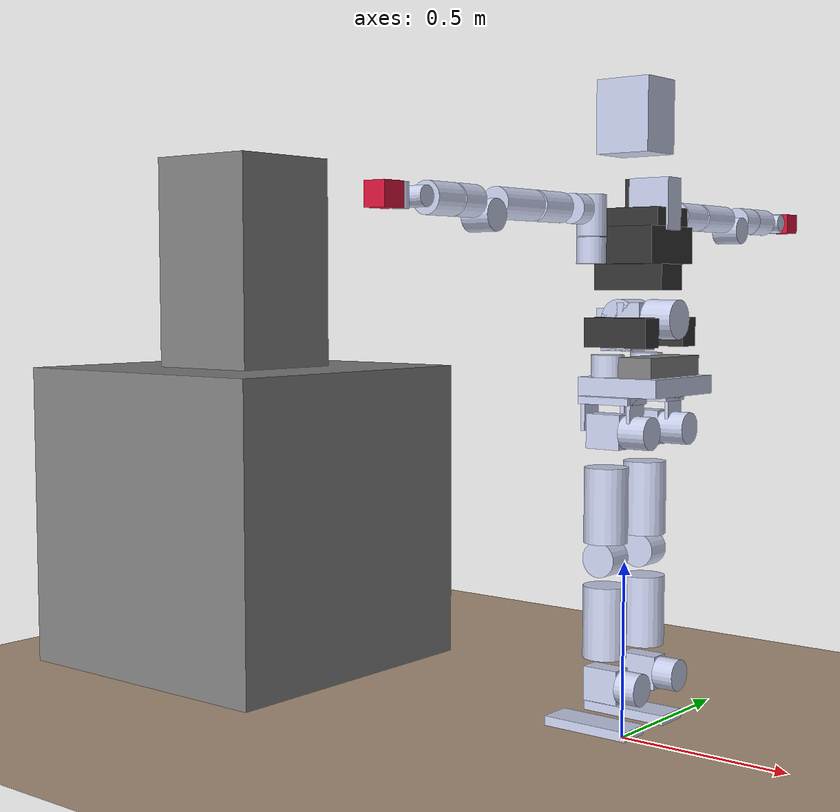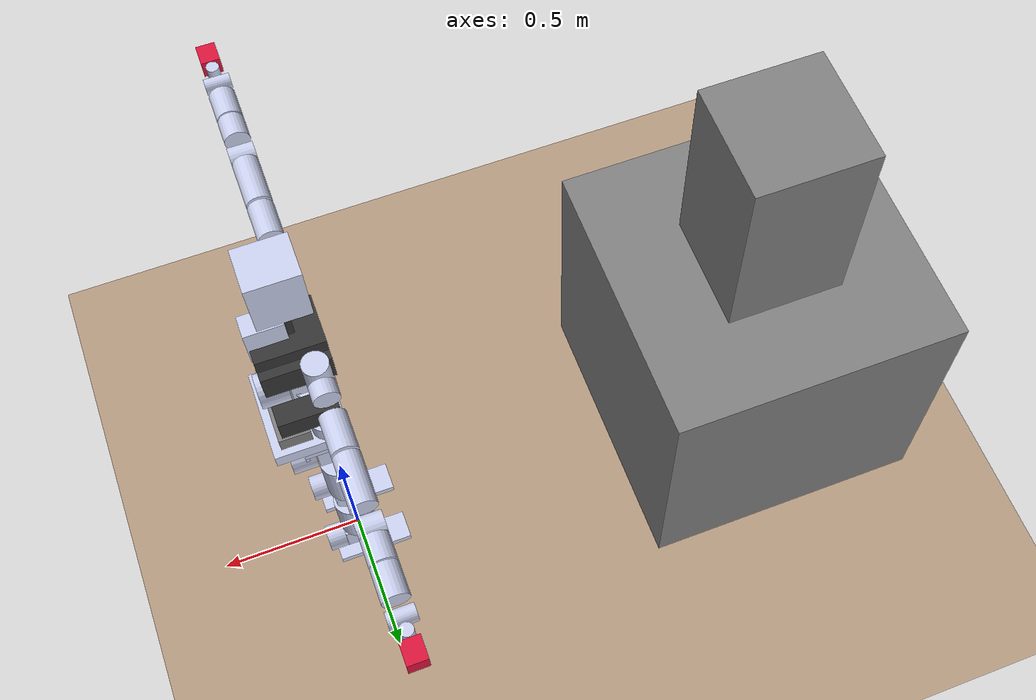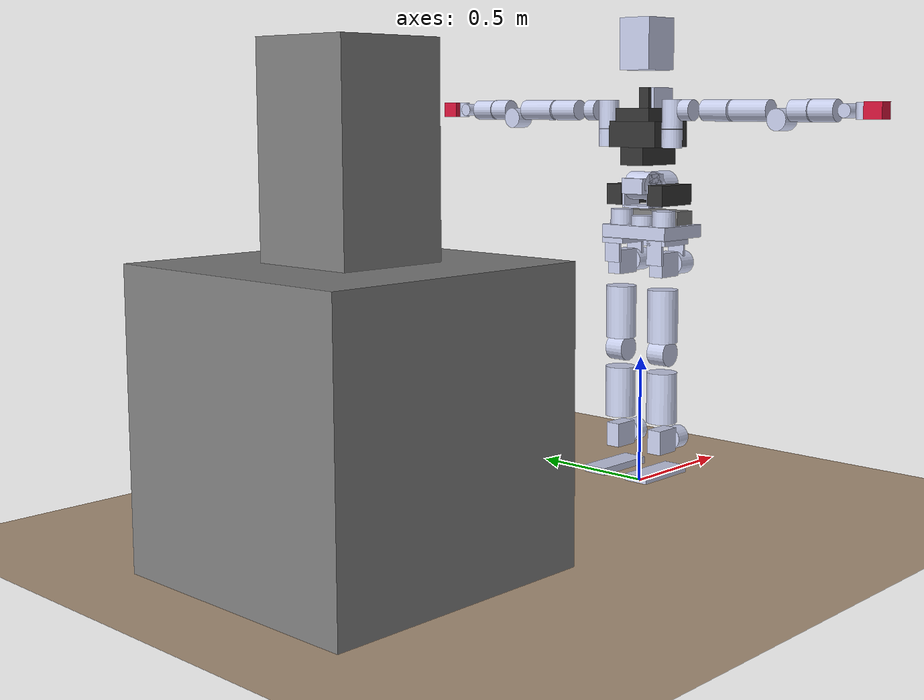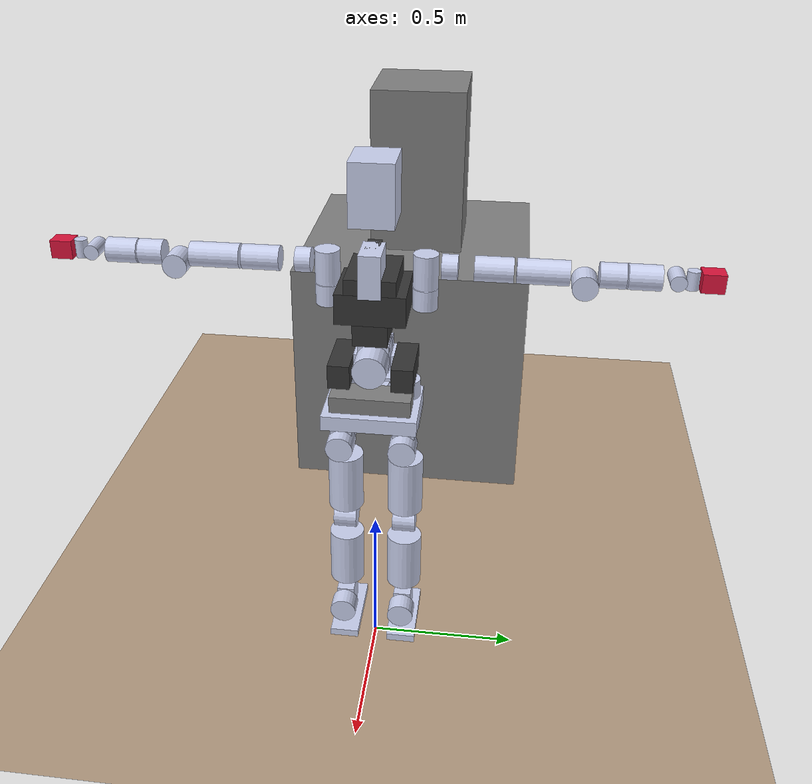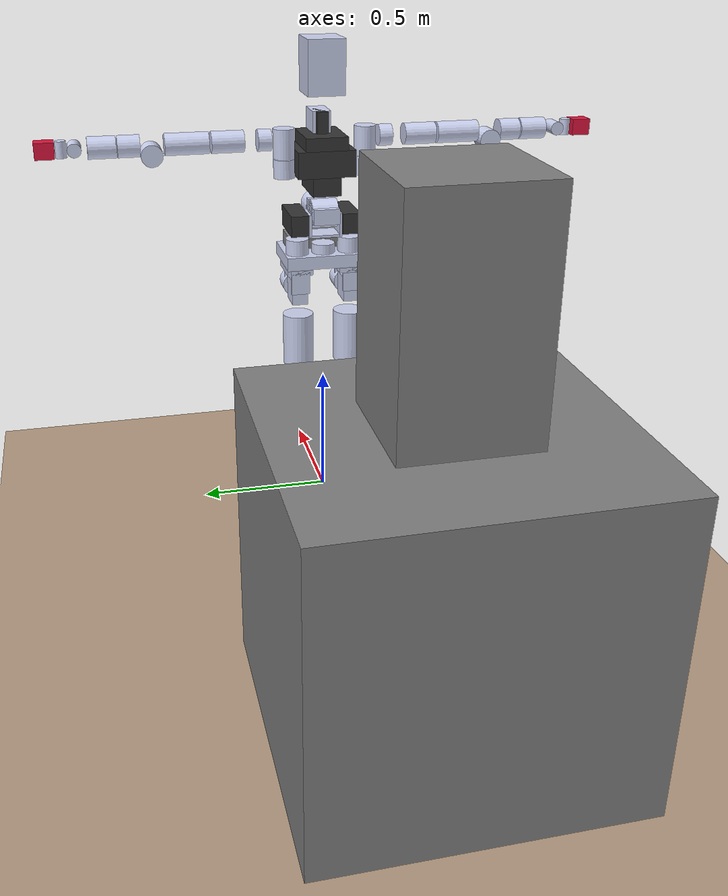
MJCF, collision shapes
<mujoco model="dyros_red_description">
    <compiler angle="radian" meshdir="../meshes/"/>
    <size njmax="500" nconmax="100" />

	<default>

		<joint damping="1"/>
		<default class="viz">
			<geom contype="0" conaffinity="0" group="1" type="mesh" rgba=".6 .6 .7 1"/>
		</default>

		<default class="cls">
			<geom group="2" rgba="0.79216 0.81961 0.93333 0.05"/>
		</default>

		<default class="cls_f">
			<geom group="2" rgba="0.79216 0.81961 0.93333 0.1" friction="1 0.005 0.0001"/>
		</default>

		<default class="FTsensor">
			<site type="cylinder" size="0.005 0.005" group="4" rgba=".1 .1 .9 1"/>
		</default>

	</default>

	<option timestep='0.001' iterations="50" tolerance="1e-10" solver="Newton" jacobian="dense" cone="elliptic"/>

	<visual>
		<map znear="0.05"/>
	</visual>

    <asset>
        <mesh name="Pelvis_link" file="Pelvis_link2.STL" scale="0.001 0.001 0.001"/>
        <mesh name="HipRoll_R_link" file="HipRoll_R_link.STL" />
        <mesh name="HipCenter_R_Link" file="HipCenter_R_Link.STL" />
        <mesh name="Thigh_R_Link" file="Thigh_R_Link.STL" />
        <mesh name="Knee_R_Link" file="Knee_R_Link.STL" />
        <mesh name="AnkleCenter_R_Link" file="AnkleCenter_R_Link.STL" />
        <mesh name="AnkleRoll_R_Link" file="AnkleRoll_R_Link.STL" />
        <mesh name="HipRoll_L_Link" file="HipRoll_L_Link.STL" />
        <mesh name="HipCenter_L_Link" file="HipCenter_L_Link.STL" />
        <mesh name="Thigh_L_Link" file="Thigh_L_Link.STL" />
        <mesh name="Knee_L_Link" file="Knee_L_Link.STL" />
        <mesh name="AnkleCenter_L_Link" file="AnkleCenter_L_Link.STL" />
        <mesh name="AnkleRoll_L_Link" file="AnkleRoll_L_Link.STL" />
        <mesh name="waist1" file="waistyaw.STL" scale="0.001 0.001 0.001"/>
        <mesh name="waist2" file="waist2.STL" />
        <mesh name="upperbody" file="upperbody.STL" />
        <mesh name="R_shoulder1" file="R_shoulder1.STL" />
        <mesh name="R_shoulder2" file="R_shoulder2.STL" />
        <mesh name="R_shoulder3" file="R_shoulder3.STL" />
        <mesh name="R_arm" file="R_arm.STL" />
        <mesh name="R_elbow" file="R_elbow.STL" />
        <mesh name="R_forearm" file="R_forearm.STL" />
        <mesh name="R_wrist1" file="R_wrist1.STL" />
        <mesh name="L_shoulder1" file="L_shoulder1.STL" />
        <mesh name="L_shoulder2" file="L_shoulder2.STL" />
        <mesh name="L_shoulder3" file="L_shoulder3.STL" />
        <mesh name="L_arm" file="L_arm.STL" />
        <mesh name="L_elbow" file="L_elbow.STL" />
        <mesh name="L_forearm" file="L_forearm.STL" />
        <mesh name="L_wrist1" file="L_wrist1.STL" />
		<mesh name="neck" file="neck.STL" />
		<mesh name="head" file="head.STL" />
		<mesh name="hand" file="wrist2joint.STL" scale="0.001 0.001 0.001"/>
    </asset>

    <worldbody>
		<geom name="ground" type="plane" pos="0 0 0" size="4 4 .05" friction="1 0.005 0.0001" rgba="0.7 0.6 0.5 1"/>
		<geom name="box" type="box" size="0.5 0.5 0.5" pos="-1.5 0 0.5"/>
		<geom name="box2" type="box" size="0.2 0.2 0.5" pos="-1.5 0 1.2"/>
		<light mode='targetbodycom' target='base_link' directional='false' diffuse='.8 .8 .8' specular='0.8 0.8 0.8' pos='0 0 4.0' dir='0 0 -1'/>

        <body name="base_link" pos="0 0 1" euler="0 0 3.1415">
			<joint type="free" limited='false' damping="0" stiffness="0" armature="0"/>
            <inertial pos="-0.0099622 6.3628e-07 0.012618" quat="0.496444 0.497031 -0.503539 0.502944" mass="0.90054" diaginertia="0.0101981 0.00947498 0.00223109" />
            <geom class="viz" rgba="0.20313 0.20313 0.20313 1" quat="0.5 0.5 0.5 0.5" mesh="Pelvis_link" />
			<geom size="0.045 0.044" pos="0 0 0.019" type="cylinder" class="cls" />
            <geom size="0.045 0.055" pos="0 0.1025 0.03" type="cylinder" class="cls" />
            <geom size="0.045 0.055" pos="0 -0.1025 0.03" type="cylinder" class="cls" />
            <geom size="0.12 0.1525 0.025" pos="-0.058 0 0" type="box" class="cls" />
			<geom size="0.05 0.13 0.05" pos="-0.1 0 0.03" type="box" group="1"/>
			<site name="Pelvis_IMU" type="cylinder" size="0.005 0.005" group="4" rgba=".1 .1 .9 1"/>
            <body name="R_HipRoll_Link" pos="0 -0.1025 -0.1225">
                <inertial pos="-0.049575 6.7216e-07 -0.060375" quat="0.598696 0.376256 0.376257 0.598686" mass="0.46745" diaginertia="0.0027531 0.00245571 0.00106929" />
                <joint name="R_HipRoll_Joint" pos="0 0 0" axis="0 0 1" limited="true" range="-3.14 3.14" />
                <geom class="viz" rgba="0.20313 0.20313 0.20313 1" mesh="HipRoll_R_link" />
				<geom size="0.045 0.04" pos="-0.1 0 0" quat="0.707107 0 0.707107 0" type="cylinder" class="cls" />
                <geom size="0.077 0.05 0.01" pos="-0.016 0 0.085" type="box" class="cls" />
                <geom size="0.006 0.036 0.0475" pos="0.055 0 0.0475" type="box" class="cls" />
                <geom size="0.006 0.036 0.0475" pos="-0.087 0 0.0475" type="box" class="cls" />
                <body name="R_HipCenter_Link" pos="0 0 0">
                    <inertial pos="-0.006697 0.001977 6.3884e-05" quat="0.484612 0.501146 0.507244 0.506663" mass="0.37947" diaginertia="0.000743971 0.000633861 0.000564699" />
                    <joint name="R_HipCenter_Joint" pos="0 0 0" axis="1 0 0" limited="true" range="-3.14 3.14" />
                    <geom class="viz" rgba="0.20313 0.20313 0.20313 1" mesh="HipCenter_R_Link" />
					<geom size="0.05225 0.03 0.0475" pos="-0.0045 0 0" type="box" class="cls" />
                    <body name="R_Thigh_Link" pos="0 0 0">
                        <inertial pos="-0.0010688 0.00026335 -0.21805" quat="0.72325 -0.000982196 -0.0109523 0.690499" mass="1.0564" diaginertia="0.0159719 0.0157965 0.00260278" />
                        <joint name="R_Thigh_Joint" pos="0 0 0" axis="0 1 0" limited="true" range="-3.14 3.14" />
						<geom size="0.049 0.038815" pos="0 0 -0.35" quat="0.707107 0.707107 0 0" type="cylinder" class="cls" />
                        <geom size="0.06 0.10375" pos="0 0 -0.2023" type="cylinder" class="cls" />
                        <geom class="viz" rgba="0.85938 0.07813 0.23438 1" mesh="Thigh_R_Link" />
                        <body name="R_Knee_Link" pos="0 0 -0.35">
                            <inertial pos="0.0070158 -0.0019227 -0.16799" quat="0.999873 0.00580515 0.00441453 -0.0141453" mass="0.70655" diaginertia="0.00984496 0.00953182 0.00179683" />
                            <joint name="R_Knee_Joint" pos="0 0 0" axis="0 1 0" limited="true" range="0 2.62" />
                            <geom class="viz" rgba="0.85938 0.07813 0.23438 1" mesh="Knee_R_Link" />
							<geom size="0.06 0.1" pos="0 0 -0.175" type="cylinder" class="cls" />
                            <body name="R_AnkleCenter_Link" pos="0 0 -0.35">
                                <inertial pos="-0.008151 0.0019259 -7.0421e-05" quat="0.49798 0.486061 0.510295 0.505332" mass="0.38954" diaginertia="0.000762715 0.000655573 0.000568523" />
                                <joint name="R_AnkleCenter_Joint" pos="0 0 0" axis="0 1 0" limited="true" range="-3.14 3.14" />
                                <geom class="viz" rgba="0.20313 0.20313 0.20313 1" mesh="AnkleCenter_R_Link" />
								<geom size="0.05225 0.03 0.0475" pos="-0.0045 0 0" type="box" class="cls" />
                                <body name="R_AnkleRoll_Link" pos="0 0 0">
                                    <inertial pos="-0.0030635 9.3328e-08 -0.086853" quat="0.356619 0.610598 0.610576 0.356636" mass="0.98346" diaginertia="0.0067953 0.00592353 0.00221167" />
                                    <joint name="R_AnkleRoll_Joint" pos="0 0 0" axis="1 0 0" limited="true" range="-3.14 3.14" />
                                    <geom class="viz" rgba="0.85938 0.07813 0.23438 1" mesh="AnkleRoll_R_Link" />
									<geom size="0.13 0.05 0.0135" pos="0.0317 0 -0.1233" type="box" class="cls_f"/>
                                    <geom size="0.045 0.03125" pos="-0.08875 0 0" quat="0.707107 0 -0.707107 0" type="cylinder" class="cls" />
									<site class="FTsensor" name="RF_FT" pos="0 0 0"/>
                                </body>
                            </body>
                        </body>
                    </body>
                </body>
            </body>
            <body name="L_HipRoll_Link" pos="0 0.1025 -0.1225">
                <inertial pos="-0.049575 6.7355e-07 -0.060375" quat="0.598696 0.376256 0.376257 0.598686" mass="0.46745" diaginertia="0.0027531 0.00245571 0.00106929" />
                <joint name="L_HipRoll_Joint" pos="0 0 0" axis="0 0 1" limited="true" range="-3.14 3.14" />
                <geom class="viz" rgba="0.20313 0.20313 0.20313 1" mesh="HipRoll_L_Link" />
				<geom size="0.045 0.04" pos="-0.1 0 0" quat="0.707107 0 0.707107 0" type="cylinder" class="cls" />
                <geom size="0.077 0.05 0.01" pos="-0.016 0 0.085" type="box" class="cls" />
                <geom size="0.006 0.036 0.0475" pos="0.055 0 0.0475" type="box" class="cls" />
                <geom size="0.006 0.036 0.0475" pos="-0.087 0 0.0475" type="box" class="cls" />
                <body name="L_HipCenter_Link" pos="0 0 0">
                    <inertial pos="-0.0066954 -0.001977 6.344e-05" quat="0.506746 0.507195 0.501082 0.484643" mass="0.37947" diaginertia="0.000743981 0.00063388 0.000564688" />
                    <joint name="L_HipCenter_Joint" pos="0 0 0" axis="1 0 0" limited="true" range="-3.14 3.14" />
                    <geom class="viz" rgba="0.20313 0.20313 0.20313 1" mesh="HipCenter_L_Link" />
					<geom size="0.05225 0.03 0.0475" pos="-0.0045 0 0" type="box" class="cls" />
                    <body name="L_Thigh_Link" pos="0 0 0">
                        <inertial pos="-0.0010686 -0.00037691 -0.21804" quat="0.703666 -0.0106801 -0.00144767 0.710449" mass="1.0564" diaginertia="0.0159713 0.0157969 0.00260304" />
                        <joint name="L_Thigh_Joint" pos="0 0 0" axis="0 1 0" limited="true" range="-3.14 3.14" />
                        <geom class="viz" rgba="0.85938 0.07813 0.23438 1" mesh="Thigh_L_Link" />
						<geom size="0.049 0.038815" pos="0 0 -0.35" quat="0.707107 0.707107 0 0" type="cylinder" class="cls" />
                        <geom size="0.06 0.10375" pos="0 0 -0.2023" type="cylinder" class="cls" />
                        <body name="L_Knee_Link" pos="0 0 -0.35">
                            <inertial pos="0.0070122 0.001804 -0.16799" quat="0.999796 -0.00566183 0.0044117 0.0188787" mass="0.70655" diaginertia="0.00984504 0.00953107 0.00179718" />
                            <joint name="L_Knee_Joint" pos="0 0 0" axis="0 1 0" limited="true" range="0 2.62" />
                            <geom class="viz" rgba="0.85938 0.07813 0.23438 1" mesh="Knee_L_Link" />
							<geom size="0.06 0.1" pos="0 0 -0.175" type="cylinder" class="cls" />
                            <body name="L_AnkleCenter_Link" pos="0 0 -0.35">
                                <inertial pos="-0.008176 -0.0019259 -6.7326e-05" quat="0.50517 0.511569 0.486378 0.496526" mass="0.38954" diaginertia="0.000762582 0.000655331 0.000568577" />
                                <joint name="L_AnkleCenter_Joint" pos="0 0 0" axis="0 1 0" limited="true" range="-3.14 3.14" />
                                <geom class="viz" rgba="0.20313 0.20313 0.20313 1" mesh="AnkleCenter_L_Link" />
								<geom size="0.05225 0.03 0.0475" pos="-0.0045 0 0" type="box" class="cls" />
                                <body name="L_AnkleRoll_Link" pos="0 0 0">
                                    <inertial pos="-0.0030635 9.3328e-08 -0.086853" quat="0.356619 0.610598 0.610576 0.356636" mass="0.98346" diaginertia="0.0067953 0.00592353 0.00221167" />
                                    <joint name="L_AnkleRoll_Joint" pos="0 0 0" axis="1 0 0" limited="true" range="-3.14 3.14" />
                                    <geom class="viz" rgba="0.85938 0.07813 0.23438 1" mesh="AnkleRoll_L_Link" />
									<geom size="0.13 0.05 0.0135" pos="0.0317 0 -0.1233" type="box" class="cls_f"/>
                                    <geom size="0.045 0.03125" pos="-0.08875 0 0" quat="0.707107 0 -0.707107 0" type="cylinder" class="cls" />
									<site class="FTsensor" name="LF_FT" pos="0 0 0"/>
                                </body>
                            </body>
                        </body>
                    </body>
                </body>
            </body>
            <body name="Waist1_Link" pos="0 0 0.18">
                <inertial pos="0 0 -0.04182" quat="0.707107 0.707107 0 0" mass="0.74235" diaginertia="0.00325468 0.00270188 0.00165546" />
                <joint name="Waist1_Joint" pos="0 0 0" axis="0 0 1" limited="true" range="-2.094 2.094" />
                <geom class="viz" rgba="0.85938 0.07813 0.23438 1" pos="0 0 -0.085" quat="0 0.707107 0 0.707107" mesh="waist1" />
                <geom size="0.047 0.065 0.005" pos="0 0 -0.081" type="box" class="cls" />
                <geom size="0.047 0.005 0.0455" pos="0 0.06 -0.0405" type="box" class="cls" />
                <geom size="0.047 0.005 0.0455" pos="0 -0.06 -0.0405" type="box" class="cls" />
				<geom size="0.095 0.035 0.04" pos="-0.04 -0.1 -0.035" type="box" rgba="0.20313 0.20313 0.20313 1" group="1"/>
				<geom size="0.095 0.035 0.04" pos="-0.04 0.1 -0.035" type="box" rgba="0.20313 0.20313 0.20313 1" group="1"/>
                <body name="Waist2_Link" pos="0 0 0">
                    <inertial pos="-0.00065 0 1e-05" quat="0 0.707107 0 0.707107" mass="3.27104" diaginertia="0.00602216 0.0049746 0.00462286" />
                    <joint name="Waist2_Joint" pos="0 0 0" axis="0 1 0" limited="true" range="-2.094 2.094" />
                    <geom class="viz" rgba="0.20313 0.20313 0.20313 1" mesh="waist2" />
					<geom size="0.055 0.05" quat="0.707107 0.707107 0 0" type="cylinder" class="cls" />
                    <geom size="0.05 0.05 0.03" pos="0.02 0 0" type="box" class="cls" />
                    <geom size="0.045 0.05 0.0455" pos="-0.02 0 0" type="box" class="cls" />
                    <body name="Upperbody_Link" pos="0 0 0">
                        <inertial pos="-0.04733 0 0.16266" quat="0.991857 0 -0.127356 0" mass="16.4339" diaginertia="0.274087 0.242243 0.173295" />
                        <joint name="Upperbody_Joint" pos="0 0 0" axis="-1 0 0" limited="true" range="-2.094 2.094" />
                        <geom class="viz" rgba="0.85938 0.07813 0.23438 1" mesh="upperbody" />
						<geom size="0.105 0.11 0.05" pos="-0.03 0 0.2" type="box" rgba="0.20313 0.20313 0.20313 1" group="1"/>
						<geom size="0.105 0.08 0.025" pos="-0.03 0 0.275" type="box" rgba="0.20313 0.20313 0.20313 1" group="1"/>
                        <geom size="0.105 0.055 0.035" pos="-0.03 0 0.115" type="box" rgba="0.20313 0.20313 0.20313 1" group="1"/>
                        <geom size="0.04 0.022 0.07" pos="-0.04 0 0.31" type="box" rgba="0.20313 0.20313 0.20313 1" group="1" />

						<geom size="0.105 0.11 0.05" pos="-0.03 0 0.2" type="box" contype="0" conaffinity="0" class="cls"/>
						<geom size="0.105 0.08 0.025" pos="-0.03 0 0.275" type="box" contype="0" conaffinity="0" class="cls"/>
                        <geom size="0.105 0.055 0.035" pos="-0.03 0 0.115" type="box" contype="0" conaffinity="0" class="cls"/>

						<geom size="0.06 0.035 0.07" pos="-0.08 0 0.31" type="box" class="cls" />
                        <geom size="0.054 0.045" pos="-0.115 0 0" quat="0.707107 0 0.707107 0" type="cylinder" class="cls" />
                        <geom size="0.04 0.035" pos="0.023 0.154 0.185" type="cylinder" class="cls" />
                        <geom size="0.04 0.035" pos="0.023 -0.154 0.185" type="cylinder" class="cls" />

                        <geom class="viz" rgba="0.20313 0.20313 0.20313 1" pos="-0.036 0 0.3795" mesh="neck" />
                        <geom class="viz" rgba="0.85938 0.07813 0.23438 1" pos="-0.036 0 0.407" mesh="head" />
						<geom class="cls" size="0.08 0.07 0.1" type="box" pos="-0.016 0 0.547"/>
						<camera name="Head camera" euler="0 -1.5708 -1.5708" fovy="80" pos="0.084 0 0.647"/>

                        <body name="R_Shoulder1_Link" pos="0.023 -0.154 0.2275">
                            <inertial pos="-3e-05 -0.00397 0.06029" quat="0.678735 -0.0962618 0.0973029 0.721516" mass="1.6762" diaginertia="0.00195894 0.0019255 0.00165624" />
                            <joint name="R_Shoulder1_Joint" pos="0 0 0" axis="0 0 1" limited="true" range="-1.54 2.09" />
                            <geom class="viz" rgba="0.85938 0.07813 0.23438 1" mesh="R_shoulder1" />
							<geom size="0.04 0.055" pos="0 0 0.05" type="cylinder" class="cls" />
                            <body name="R_Shoulder2_Link" pos="0 -0.0341 0.065">
                                <inertial pos="0.00107 -0.0491 -1e-05" quat="0.51724 0.479014 -0.520322 0.481948" mass="0.4016" diaginertia="0.00106758 0.000992068 0.000622085" />
                                <joint name="R_Shoulder2_Joint" pos="0 0 0" axis="0 -1 0" limited="true" range="-3.14159 3.14159" />
                                <geom class="viz" rgba="0.20313 0.20313 0.20313 1" mesh="R_shoulder2" />
								<geom size="0.04 0.025" pos="0 -0.04 0" quat="0.707107 0.707107 0 0" type="cylinder" class="cls" />
                                <body name="R_Shoulder3_Link" pos="0 -0.115 0">
                                    <inertial pos="0.00262 -0.04826 0.00023" quat="0.708306 0.705235 0.0242641 0.0189048" mass="2.90141" diaginertia="0.00846389 0.00829694 0.00247136" />
                                    <joint name="R_Shoulder3_Joint" pos="0 0 0" axis="-1 0 0" limited="true" range="-1.9199 1.9199" />
                                    <geom class="viz" rgba="0.20313 0.20313 0.20313 1"  mesh="R_shoulder3" />
									<geom size="0.04 0.06" pos="0 -0.06 0" quat="0.707107 0.707107 0 0" type="cylinder" class="cls" />
                                    <body name="R_Armlink_Link" pos="0 -0.1281 0">
                                        <inertial pos="0.01896 -0.11642 -0.0119" quat="0.503607 0.520285 -0.555379 0.408947" mass="0.43517" diaginertia="0.00318243 0.00291909 0.000624466" />
                                        <joint name="R_Armlink_Joint" pos="0 0 0" axis="0 -1 0" limited="true" range="-3.14159 3.14159" />
										<geom size="0.04 0.08" pos="0 -0.08 0" quat="0.707107 0.707107 0 0" type="cylinder" class="cls" />
                                        <geom class="viz" rgba="0.85938 0.07813 0.23438 1" mesh="R_arm" />
                                        <body name="R_Elbow_Link" pos="0 -0.207 -0.0325">
                                            <inertial pos="-0.00136 -0.05256 0.01764" quat="0.517663 0.708306 -0.39581 0.27141" mass="1.96511" diaginertia="0.0065354 0.00631431 0.00138011" />
                                            <joint name="R_Elbow_Joint" pos="0 0 0" axis="1 0 0" limited="true" range="-2.967 3.14159" />
											<geom size="0.04 0.04" pos="0 -0.08 0.0325" quat="0.707107 0.707107 0 0" type="cylinder" class="cls" />
                                            <geom size="0.04 0.04" quat="0.707107 0 0.707107 0" type="cylinder" class="cls" />
                                            <geom class="viz" rgba="0.20313 0.20313 0.20313 1" mesh="R_elbow" />
                                            <body name="R_Forearm_Link" pos="0 -0.1244 0.0325">
                                                <inertial pos="0.01426 -0.0767 0.00033" quat="0.55187 0.502809 -0.506596 0.431257" mass="0.30234" diaginertia="0.00126963 0.00106149 0.000388409" />
                                                <joint name="R_Forearm_Joint" pos="0 0 0" axis="0 -1 0" limited="true" range="-3.14159 3.14159" />
												<geom size="0.04 0.05" pos="0 -0.05 0" quat="0.707107 0.707107 0 0" type="cylinder" class="cls" />
                                                <geom size="0.025 0.04" pos="0 -0.1451 0" quat="0.707107 0 0.707107 0" type="cylinder" class="cls" />
                                                <geom class="viz" rgba="0.85938 0.07813 0.23438 1" mesh="R_forearm" />
                                                <body name="R_Wrist1_Link" pos="0 -0.1451 0">
                                                    <inertial pos="-0.00158 -0.02153 3e-05" quat="0.521107 0.474698 -0.525252 0.476676" mass="0.70923" diaginertia="0.00068319 0.000650504 0.000394066" />
                                                    <joint name="R_Wrist1_Joint" pos="0 0 0" axis="1 0 0" limited="true" range="-3.14159 3.14159" />
													<geom size="0.02 0.03" pos="0 -0.046 0" type="cylinder" class="cls" />
                                                    <geom class="viz" rgba="0.20313 0.20313 0.20313 1" mesh="R_wrist1" />
                                                    <body name="R_Wrist2_Link" pos="0 -0.046 0">
                                                        <inertial pos="0.00063 -0.0536 0.00178" quat="0.707107 0.707107 0 0" mass="1" diaginertia="0.00086545 0.000820823 0.000696917" />
                                                        <joint name="R_Wrist2_Joint" pos="0 0 0" axis="0 0 1" limited="true" range="-2.094 2.094" />
                                                        <geom size="0.03 0.035 0.03" pos="0 -0.057 0" type="box" rgba="0.85938 0.07813 0.23438 1" group="1"/>
														<site class="FTsensor" name="RH_FT" pos="0 0 0"/>

                                                    </body>
                                                </body>
                                            </body>
                                        </body>
                                    </body>
                                </body>
                            </body>
                        </body>
                        <body name="L_Shoulder1_Link" pos="0.023 0.154 0.2275">
                            <inertial pos="-3e-05 0.00397 0.06029" quat="0.678735 0.0962618 -0.0973029 0.721516" mass="1.6762" diaginertia="0.00195894 0.0019255 0.00165624" />
                            <joint name="L_Shoulder1_Joint" pos="0 0 0" axis="0 0 1" limited="true" range="-2.09 1.54" />
                            <geom class="viz" rgba="0.85938 0.07813 0.23438 1" mesh="L_shoulder1" />
							<geom size="0.04 0.055" pos="0 0 0.05" type="cylinder" class="cls" />
                            <body name="L_Shoulder2_Link" pos="0 0.0341 0.065">
                                <inertial pos="0.00107 0.0491 -1e-05" quat="0.479014 0.51724 -0.481948 0.520322" mass="0.4016" diaginertia="0.00106758 0.000992068 0.000622085" />
                                <joint name="L_Shoulder2_Joint" pos="0 0 0" axis="0 1 0" limited="true" range="-3.14159 3.14159" />
                                <geom class="viz" rgba="0.20313 0.20313 0.20313 1" mesh="L_shoulder2" />
								<geom size="0.04 0.025" pos="0 0.04 0" quat="0.707107 0.707107 0 0" type="cylinder" class="cls" />
                                <body name="L_Shoulder3_Link" pos="0 0.115 0">
                                    <inertial pos="0.00262 0.04826 0.00023" quat="0.705235 0.708306 -0.0189048 -0.0242641" mass="2.90141" diaginertia="0.00846389 0.00829694 0.00247136" />
                                    <joint name="L_Shoulder3_Joint" pos="0 0 0" axis="-1 0 0" limited="true" range="-1.9199 1.9199" />
									<geom size="0.04 0.06" pos="0 0.06 0" quat="0.707107 0.707107 0 0" type="cylinder" class="cls" />
                                    <geom class="viz" rgba="0.20313 0.20313 0.20313 1"  mesh="L_shoulder3" />
                                    <body name="L_Armlink_Link" pos="0 0.1281 0">
                                        <inertial pos="0.01896 0.11642 -0.0119" quat="0.520285 0.503607 -0.408947 0.555379" mass="0.43517" diaginertia="0.00318243 0.00291909 0.000624466" />
                                        <joint name="L_Armlink_Joint" pos="0 0 0" axis="0 1 0" limited="true" range="-3.14159 3.14159" />
										<geom size="0.04 0.08" pos="0 0.08 0" quat="0.707107 0.707107 0 0" type="cylinder" class="cls" />
                                        <geom class="viz" rgba="0.85938 0.07813 0.23438 1" mesh="L_arm" />
                                        <body name="L_Elbow_Link" pos="0 0.207 -0.0325">
                                            <inertial pos="-0.00136 0.05256 0.01764" quat="0.708306 0.517663 -0.27141 0.39581" mass="1.96511" diaginertia="0.0065354 0.00631431 0.00138011" />
                                            <joint name="L_Elbow_Joint" pos="0 0 0" axis="1 0 0" limited="true" range="-3.14159 2.8" />
											<geom size="0.04 0.04" pos="0 0.08 0.0325" quat="0.707107 0.707107 0 0" type="cylinder" class="cls" />
                                            <geom size="0.04 0.04" quat="0.707107 0 0.707107 0" type="cylinder" class="cls" />
                                            <geom class="viz" rgba="0.20313 0.20313 0.20313 1" mesh="L_elbow" />
                                            <body name="L_Forearm_Link" pos="0 0.1244 0.0325">
                                                <inertial pos="0.01426 0.0767 0.00033" quat="0.502809 0.55187 -0.431257 0.506596" mass="0.30234" diaginertia="0.00126963 0.00106149 0.000388409" />
                                                <joint name="L_Forearm_Joint" pos="0 0 0" axis="0 1 0" limited="true" range="-3.14159 3.14159" />
                                                <geom class="viz" rgba="0.85938 0.07813 0.23438 1" mesh="L_forearm" />
												<geom size="0.04 0.05" pos="0 0.05 0" quat="0.707107 0.707107 0 0" type="cylinder" class="cls" />
                                                <geom size="0.025 0.04" pos="0 0.1451 0" quat="0.707107 0 0.707107 0" type="cylinder" class="cls" />
                                                <body name="L_Wrist1_Link" pos="0 0.1451 0">
                                                    <inertial pos="-0.00158 0.02153 3e-05" quat="0.474698 0.521107 -0.476676 0.525252" mass="0.70923" diaginertia="0.00068319 0.000650504 0.000394066" />
                                                    <joint name="L_Wrist1_Joint" pos="0 0 0" axis="1 0 0" limited="true" range="-3.14159 3.14159" />
                                                    <geom class="viz" rgba="0.20313 0.20313 0.20313 1" mesh="L_wrist1" />
													<geom size="0.02 0.03" pos="0 0.046 0" type="cylinder" class="cls" />
                                                    <body name="L_Wrist2_Link" pos="0 0.046 0">
                                                        <inertial pos="0.00063 0.0536 0.00178" quat="0.707107 0.707107 0 0" mass="1" diaginertia="0.00086545 0.000820823 0.000696917" />
                                                        <joint name="L_Wrist2_Joint" pos="0 0 0" axis="0 0 1" limited="true" range="-2.094 2.094" />
                                                        <geom size="0.03 0.035 0.03" pos="0 0.057 0" type="box" rgba="0.85938 0.07813 0.23438 1" group="1"/>
														<site class="FTsensor" name="LH_FT" pos="0 0 0"/>
                                                    </body>
                                                </body>
                                            </body>
                                        </body>
                                    </body>
                                </body>
                            </body>
                        </body>

                    </body>
                </body>
            </body>
        </body>
    </worldbody>

	<actuator>

		<motor name="R_HipRoll_Motor" joint="R_HipRoll_Joint"/>
		<motor name="R_HipCentor_Motor" joint="R_HipCenter_Joint"/>
		<motor name="R_Thigh_Motor" joint="R_Thigh_Joint"/>
		<motor name="R_Knee_Motor" joint="R_Knee_Joint"/>
		<motor name="R_AnkleCenter_Motor" joint="R_AnkleCenter_Joint"/>
		<motor name="R_AnkleRoll_Motor" joint="R_AnkleRoll_Joint"/>

		<motor name="L_HipRoll_Motor" joint="L_HipRoll_Joint"/>
		<motor name="L_HipCenter_Motor" joint="L_HipCenter_Joint"/>
		<motor name="L_Thigh_Motor" joint="L_Thigh_Joint"/>
		<motor name="L_Knee_Motor" joint="L_Knee_Joint"/>
		<motor name="L_AnkleCenter_Motor" joint="L_AnkleCenter_Joint"/>
		<motor name="L_AnkleRoll_Motor" joint="L_AnkleRoll_Joint"/>

		<motor name="Waist1_Motor" joint="Waist1_Joint"/>
		<motor name="Waist2_Motor" joint="Waist2_Joint"/>
		<motor name="Upperbody_Motor" joint="Upperbody_Joint"/>
		<!--motor name="Neck_Motor" joint="Neck_Joint"/-->
		<!--motor name="Head_Motor" joint="Head_Joint"/-->

		<motor name="R_Shoulder1_Motor" joint="R_Shoulder1_Joint"/>
		<motor name="R_Shoulder2_Motor" joint="R_Shoulder2_Joint"/>
		<motor name="R_Shoulder3_Motor" joint="R_Shoulder3_Joint"/>
		<motor name="R_Armlink_Motor" joint="R_Armlink_Joint"/>
		<motor name="R_Elbow_Motor" joint="R_Elbow_Joint"/>
		<motor name="R_Forearm_Motor" joint="R_Forearm_Joint"/>
		<motor name="R_Wrist1_Motor" joint="R_Wrist1_Joint"/>
		<motor name="R_Wrist2_Motor" joint="R_Wrist2_Joint"/>

		<motor name="L_Shoulder1_Motor" joint="L_Shoulder1_Joint"/>
		<motor name="L_Shoulder2_Motor" joint="L_Shoulder2_Joint"/>
		<motor name="L_Shoulder3_Motor" joint="L_Shoulder3_Joint"/>
		<motor name="L_Armlink_Motor" joint="L_Armlink_Joint"/>
		<motor name="L_Elbow_Motor" joint="L_Elbow_Joint"/>
		<motor name="L_Forearm_Motor" joint="L_Forearm_Joint"/>
		<motor name="L_Wrist1_Motor" joint="L_Wrist1_Joint"/>
		<motor name="L_Wrist2_Motor" joint="L_Wrist2_Joint"/>

	</actuator>

	<sensor>
		<force name="LH_Force_sensor" site="LH_FT"/>
		<torque name="LH_Torque_sensor" site="LH_FT"/>
		<force name="RH_Force_sensor" site="RH_FT"/>
		<torque name="RH_Torque_sensor" site="RH_FT"/>

		<force name="LF_Force_sensor" site="LF_FT"/>
		<torque name="LF_Torque_sensor" site="LF_FT"/>
		<force name="RF_Force_sensor" site="RF_FT"/>
		<torque name="RF_Torque_sensor" site="RF_FT"/>

		<accelerometer name="Acc_Pelvis_IMU" site="Pelvis_IMU"/>
		<gyro name="Gyro_Pelvis_IMU" site="Pelvis_IMU"/>

	</sensor>
</mujoco>
